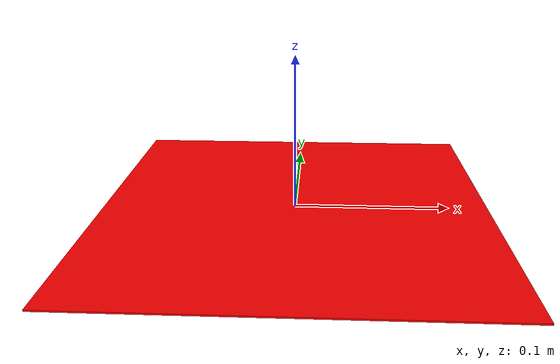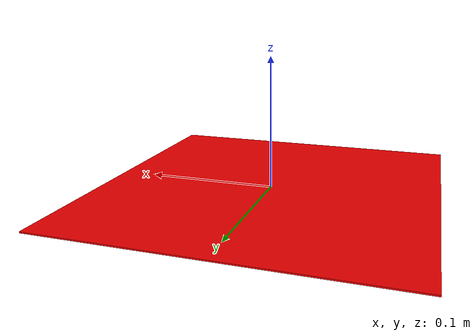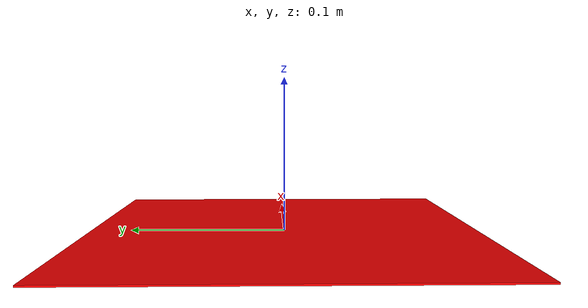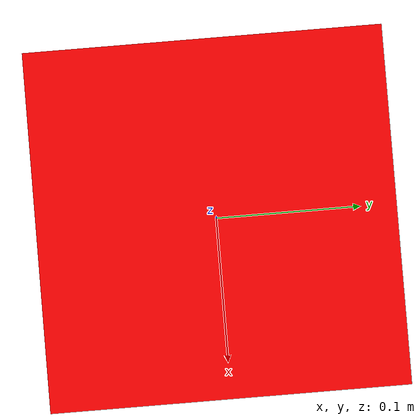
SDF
<?xml version='1.0'?>
<sdf version='1.6'>
  <model name='goal_box'>
    <pose frame=''>0 0 0 0 -0 -1.5708</pose>
    <link name='goal_box'>
      <visual name='goal_box'>
        <pose frame=''>0 0 0.0005 0 -0 0</pose>
        <geometry>
          <box>
            <!--stage2 0.5 0.5-->
            <!--stage2m 0.3 0.3-->
            <size>0.25 0.25 0.001</size>
          </box>
        </geometry>
        <material>
          <script>
            <uri>file://media/materials/scripts/gazebo.material</uri>
            <name>Gazebo/Grey</name>
          </script>
          <ambient>1 0 0 1</ambient>
        </material>
      </visual>
      <pose frame=''>0 0 0 0 -0 0</pose>
    </link>
    <static>1</static>
  </model>
</sdf>
